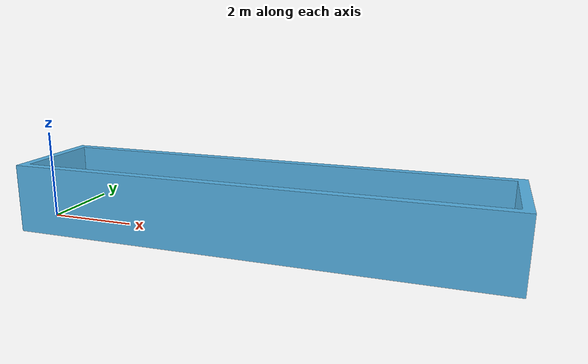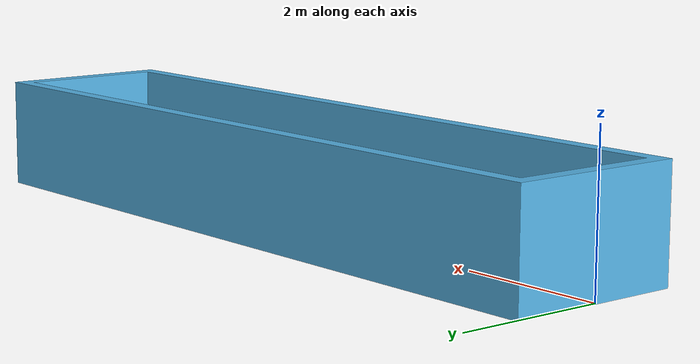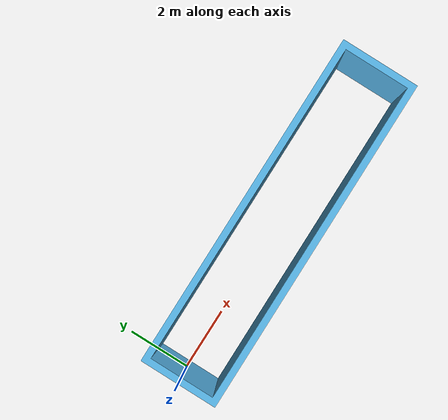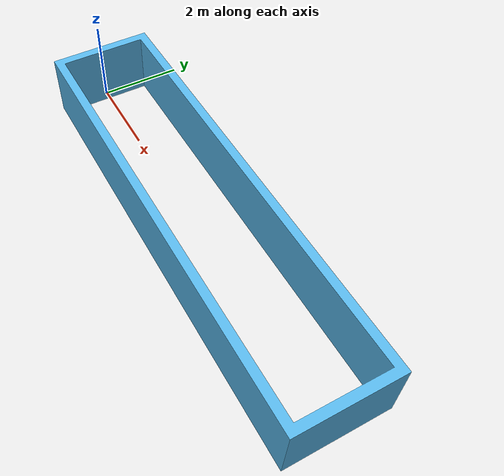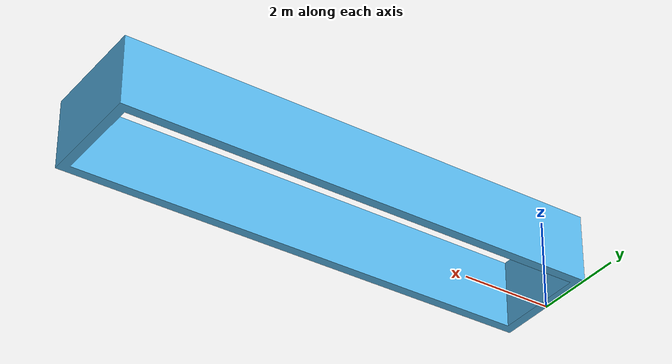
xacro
<?xml version="1.0"?>
<robot xmlns:xacro="http://www.ros.org/wiki/xacro"
       name="line_passage">

  <xacro:include filename="$(find cob_gazebo_worlds)/urdf/common.xacro" />

  <xacro:macro name="line_passage" params="name">

    <link name="world"/>

    <link name="world_link">
      <xacro:default_inertial/>
      <visual>
        <origin xyz="0 0 0" />
        <geometry>
          <mesh filename="package://msh_gazebo_worlds/Media/models/line_passage.STL" />
        </geometry>
      </visual>
      <collision>
        <origin xyz="0 0 0" />
        <geometry>
          <mesh filename="package://msh_gazebo_worlds/Media/models/line_passage.STL" />
        </geometry>
      </collision>
    </link>

    <joint name="world_joint" type="fixed">
      <origin xyz="0 0 0" rpy="0 0 0" />
      <parent link="world" />
      <child link="world_link" />
    </joint>

  </xacro:macro>

  <xacro:line_passage name="line_passage" />

</robot>
